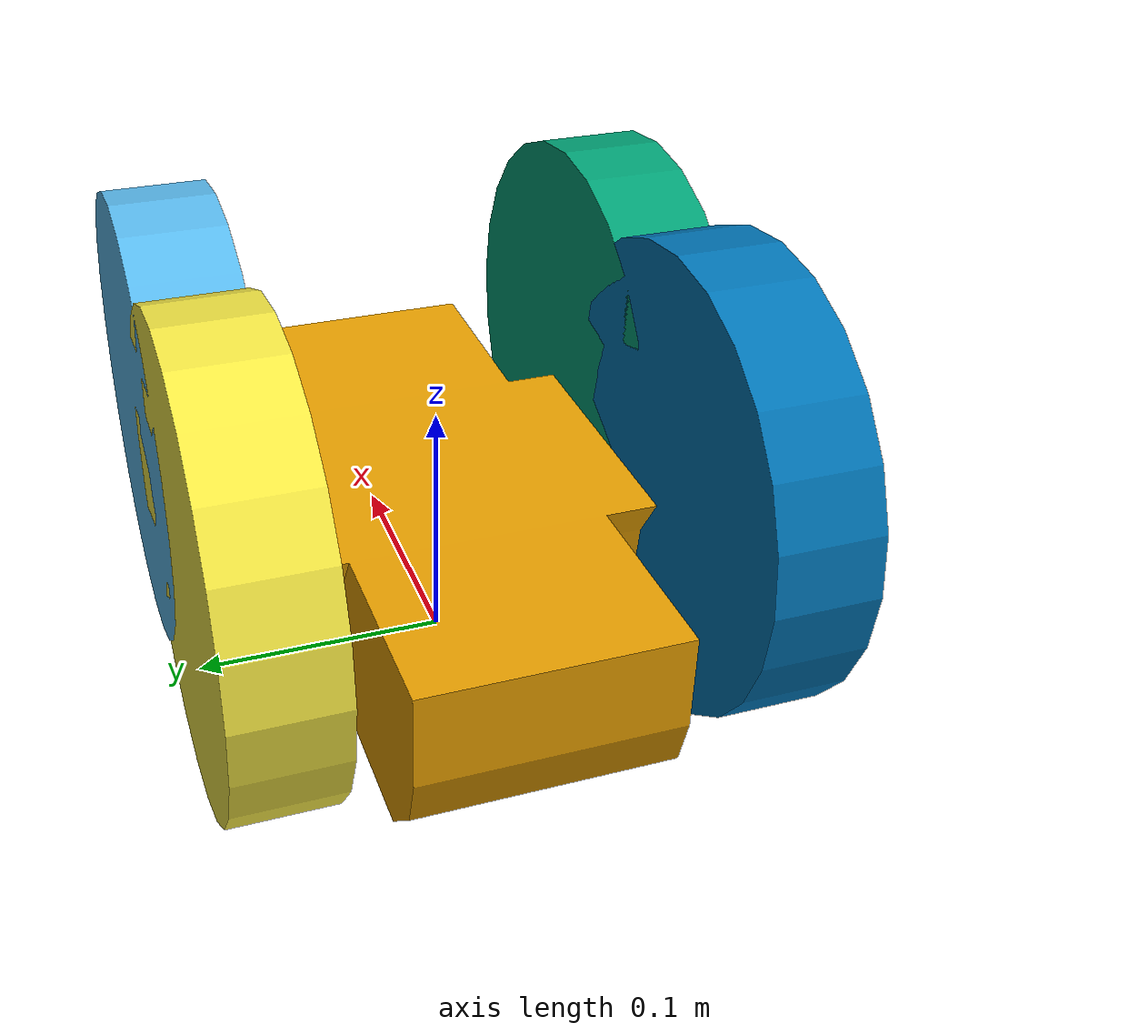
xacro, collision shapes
<?xml version="1.0"?>
<robot xmlns:xacro="http://www.ros.org/wiki/xacro" name="mecanum_robot">

  <!-- Parameters -->
  <xacro:property name="wheel_radius" value="0.09"/>
  <xacro:property name="wheel_width" value="0.04"/>

  <!-- Front–rear distance -->
  <xacro:property name="wheelbase" value="0.103"/>

  <!-- Left–right distance -->
  <xacro:property name="wheel_distance" value="0.18"/>

  <xacro:property name="chassis_length" value="0.45"/>
  <xacro:property name="chassis_width"  value="0.35"/>
  <xacro:property name="chassis_height" value="0.08"/>

  <!-- Base Link -->
  <link name="base_link">
    <visual>
      <geometry>
        <mesh filename="package://mp_description/meshes/platform.stl" />
      </geometry>
      <origin xyz="0 0 ${chassis_height/2}"/>
    </visual>
    <collision>
      <geometry>
        <mesh filename="package://mp_description/meshes/platform_c.stl" />
      </geometry>
      <origin xyz="0 0 ${chassis_height/2}"/>
    </collision>
    <inertial>
      <mass value="10.0"/>
      <origin xyz="0 0 ${chassis_height/2}"/>
      <inertia ixx="0.2" iyy="0.2" izz="0.2"
               ixy="0" ixz="0" iyz="0"/>
    </inertial>
  </link>

  <!-- Wheel Macro -->
  <xacro:macro name="mecanum_wheel" params="name x y">

    <link name="${name}_link">
      <visual>
        <geometry>
          <mesh filename="package://mp_description/meshes/wheel.stl" />
        </geometry>
        <origin rpy="1.5708 0 0"/>
      </visual>
      <collision>
        <geometry>
          <cylinder radius="${wheel_radius}" length="${wheel_width}"/>
        </geometry>
        <origin rpy="1.5708 0 0"/>
      </collision>
      <inertial>
        <mass value="1.0"/>
        <inertia ixx="0.001" iyy="0.001" izz="0.001"
                 ixy="0" ixz="0" iyz="0"/>
      </inertial>
    </link>

    <joint name="${name}_joint" type="continuous">
      <parent link="base_link"/>
      <child link="${name}_link"/>
      <origin xyz="${x} ${y} ${wheel_radius}"/>
      <axis xyz="0 1 0"/>
    </joint>

  </xacro:macro>

  <!-- Wheel Instances -->
  <xacro:mecanum_wheel
    name="front_left"
    x="${ wheelbase/2 }"
    y="${ wheel_distance/2 }"/>

  <xacro:mecanum_wheel
    name="front_right"
    x="${ wheelbase/2 }"
    y="${-wheel_distance/2 }"/>

  <xacro:mecanum_wheel
    name="rear_left"
    x="${-wheelbase/2 }"
    y="${ wheel_distance/2 }"/>

  <xacro:mecanum_wheel
    name="rear_right"
    x="${-wheelbase/2 }"
    y="${-wheel_distance/2 }"/>

  <!-- ros2_control (Custom Hardware Interface) -->

  <ros2_control name="mecanum_base" type="system">

    <hardware>
      <plugin>robot_interface_test/Robot7DoF</plugin>

      <param name="serial_dev_name">/dev/ttyUSB1</param>
      <param name="serial_baud_rate">115200</param>
      <param name="testParam">0</param>
    </hardware>

    <joint name="front_left_joint">
      <param name="motor_id"> 5 </param>
      <command_interface name="velocity">
        <param name="min">-20.0</param>
        <param name="max">20.0</param>
      </command_interface>
      <state_interface name="position">
        <param name="initial_value">0.0</param>
      </state_interface>
      <state_interface name="velocity"/>
    </joint>

    <joint name="front_right_joint">
    <param name="motor_id"> 0 </param>
      <command_interface name="velocity">
        <param name="min">-20.0</param>
        <param name="max">20.0</param>
      </command_interface>
      <state_interface name="position">
        <param name="initial_value">0.0</param>
      </state_interface>
      <state_interface name="velocity"/>
    </joint>

    <joint name="rear_left_joint">
    <param name="motor_id"> 2 </param>
      <command_interface name="velocity">
        <param name="min">-20.0</param>
        <param name="max">20.0</param>
      </command_interface>
      <state_interface name="position">
        <param name="initial_value">0.0</param>
      </state_interface>
      <state_interface name="velocity"/>
    </joint>

    <joint name="rear_right_joint">
    <param name="motor_id"> 1 </param>
      <command_interface name="velocity">
        <param name="min">-20.0</param>
        <param name="max">20.0</param>
      </command_interface>
      <state_interface name="position">
        <param name="initial_value">0.0</param>
      </state_interface>
      <state_interface name="velocity"/>
    </joint>

  </ros2_control>

</robot>
